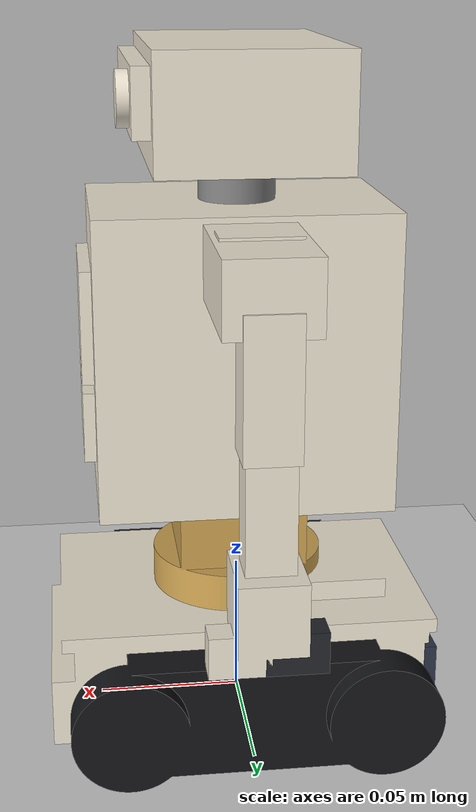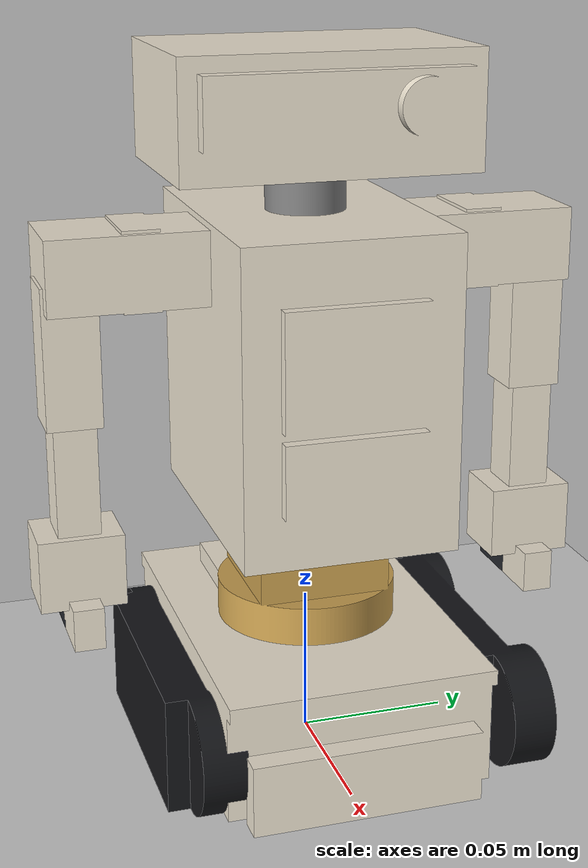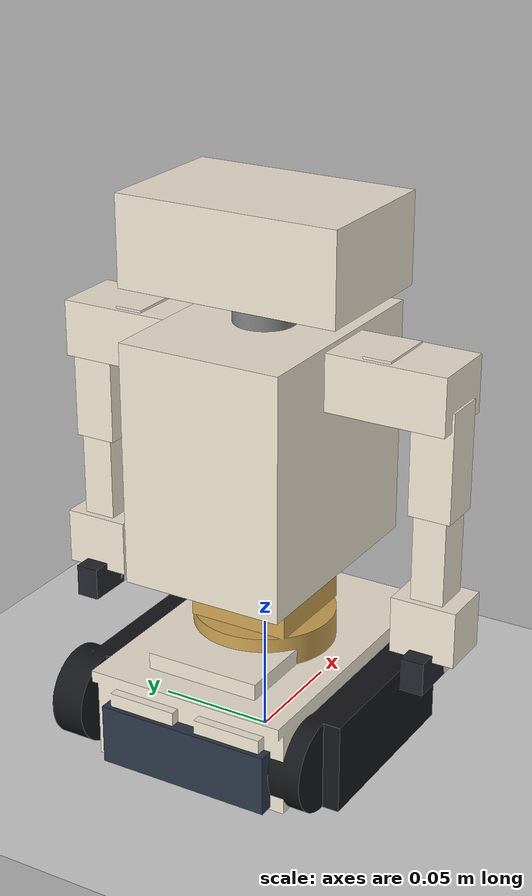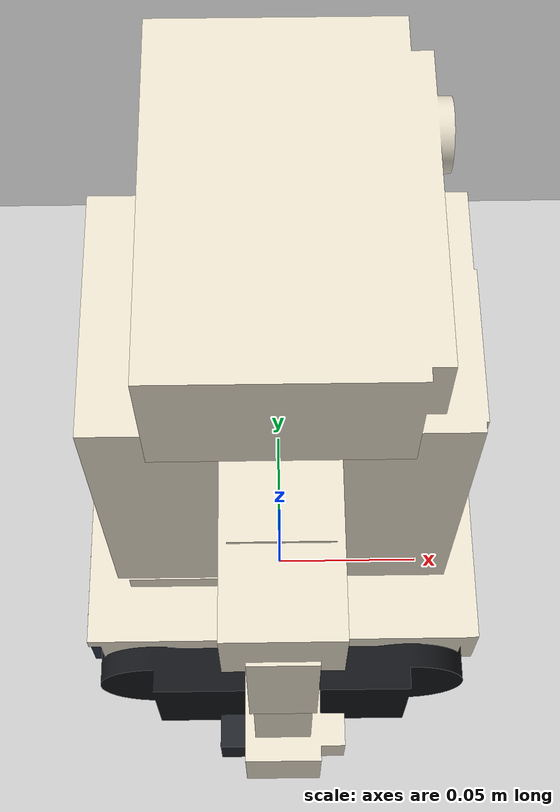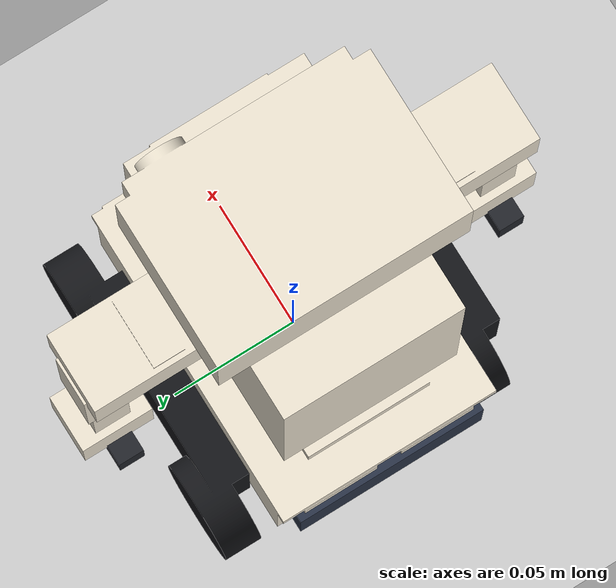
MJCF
<?xml version='1.0' encoding='utf-8'?>
<mujoco model="galahad">
  <compiler angle="radian" meshdir="." balanceinertia="true" />
  <option integrator="implicitfast" />
  <default>
    <joint damping="0.1" armature="0.01" />
  </default>
  <asset>
    <mesh name="galahad-base" file="galahad-base.stl" />
    <mesh name="galahad-rear_panel" file="galahad-rear_panel.stl" />
    <mesh name="galahad-tread_L" file="galahad-tread_L.stl" />
    <mesh name="galahad-tread_R" file="galahad-tread_R.stl" />
    <mesh name="galahad-waist" file="galahad-waist.stl" />
    <mesh name="galahad-torso" file="galahad-torso.stl" />
    <mesh name="galahad-neck" file="galahad-neck.stl" />
    <mesh name="galahad-head" file="galahad-head.stl" />
    <mesh name="galahad-shoulder_L" file="galahad-shoulder_L.stl" />
    <mesh name="galahad-upperarm_L" file="galahad-upperarm_L.stl" />
    <mesh name="galahad-forearm_L" file="galahad-forearm_L.stl" />
    <mesh name="galahad-hand_L" file="galahad-hand_L.stl" />
    <mesh name="galahad-jaw_L" file="galahad-jaw_L.stl" />
    <mesh name="galahad-shoulder_R" file="galahad-shoulder_R.stl" />
    <mesh name="galahad-upperarm_R" file="galahad-upperarm_R.stl" />
    <mesh name="galahad-forearm_R" file="galahad-forearm_R.stl" />
    <mesh name="galahad-hand_R" file="galahad-hand_R.stl" />
    <mesh name="galahad-jaw_R" file="galahad-jaw_R.stl" />
  </asset>
  <worldbody>
    <light name="sun" pos="0 0 3" dir="0 0 -1" directional="true" />
    <geom name="floor" type="plane" size="0 0 0.05" rgba="0.8 0.8 0.8 1" />
    <body name="base_link" pos="0 0 0" quat="1 0 0 0">
      <freejoint name="root" />
      <inertial pos="-0.014803559683337164 5.498723287641139e-19 0.028541766053046577" mass="0.4038111999999999" fullinertia="2.6178691825712243e-4 4.883571596682911e-4 6.332994552778354e-4 -7.300872063294368e-21 1.8889714683804695e-5 4.65342919199653e-21" />
      <geom name="base_link" type="mesh" mesh="galahad-base" pos="0 0 0" quat="1 0 0 0" rgba="0.929411768913269 0.8941176533699036 0.8196078538894653 1" />
      <body name="rear_panel" pos="0 0 0" quat="1 0 0 0">
        <inertial pos="-0.06299999999999999 -4.909553046007711e-18 0.017999999999999995" mass="0.004742399999999997" fullinertia="2.5498304e-6 2.8138240000001564e-7 2.296902400000014e-6 -1.1641532182693512e-22 1.4901161193847657e-21 2.0954757928848264e-22" />
        <geom name="rear_panel" type="mesh" mesh="galahad-rear_panel" pos="0 0 0" quat="1 0 0 0" rgba="0.16470588743686676 0.20000000298023224 0.27450981736183167 1" />
      </body>
      <body name="tread_L" pos="0.0425 0.052000000000000005 0.0195" quat="0.5 -0.5 0.5 0.5">
        <joint name="tread_L_drive" type="hinge" axis="0 0 1" ref="0" limited="false" />
        <inertial pos="1.4210854715202006e-16 0.04250000000000064 0.0029868706632391806" mass="0.017889910575127364" fullinertia="2.099683528081824e-5 2.6723442072826335e-6 2.246121794013947e-5 1.983571537547267e-10 1.8596649169921873e-19 -9.25536224917331e-20" />
        <geom name="tread_L" type="mesh" mesh="galahad-tread_L" pos="0.0195 0.0425 -0.052000000000000005" quat="-0.5 -0.5 0.5 0.5" rgba="0.0784313753247261 0.08235294371843338 0.0941176488995552 1" />
      </body>
      <body name="tread_R" pos="0.0425 -0.052000000000000005 0.0195" quat="0.5 -0.5 0.5 0.5">
        <joint name="tread_R_drive" type="hinge" axis="0 0 1" ref="0" limited="false" />
        <inertial pos="2.1316282072803006e-17 0.04250000000000026 0.002986870663239856" mass="0.017889910575127514" fullinertia="2.0996835280819033e-5 2.672344207282673e-6 2.2461217940140016e-5 1.9835715384860754e-10 2.5033950805664058e-20 -5.666993020413266e-20" />
        <geom name="tread_R" type="mesh" mesh="galahad-tread_R" pos="0.0195 0.0425 0.052000000000000005" quat="-0.5 -0.5 0.5 0.5" rgba="0.0784313753247261 0.08235294371843338 0.0941176488995552 1" />
      </body>
      <body name="waist" pos="0 0 0.051500000000000004" quat="0.7071067811865476 0 0 0.7071067811865475">
        <joint name="waist_yaw" type="hinge" axis="0 0 1" ref="0" range="-1.5707963267948966 1.5707963267948966" limited="true" />
        <inertial pos="-7.287569506481156e-18 -1.7056714334742097e-18 0.007760045530499834" mass="0.06646229045602617" fullinertia="2.0597229686421967e-5 2.0597572062645504e-5 2.6353424140666185e-5 -4.769576444800809e-10 -5.2462771290834453e-20 -4.602560966388627e-21" />
        <geom name="waist" type="mesh" mesh="galahad-waist" pos="0 0 -0.051500000000000004" quat="0.7071067811865476 0 0 -0.7071067811865475" rgba="0.7882353067398071 0.6274510025978088 0.3137255012989044 1" />
        <body name="torso" pos="0 0 0.0185" quat="0.7071067811865476 0 0.7071067811865475 0">
          <joint name="waist_pitch" type="hinge" axis="0 0 1" ref="0" range="-0.3490658503988659 0.3490658503988659" limited="true" />
          <inertial pos="-0.06345104759269206 -0.002603223935244563 3.5816977510788134e-19" mass="0.3006512000000002" fullinertia="3.9595509584043745e-4 3.7153556767138807e-4 5.289426069784923e-4 -6.698598008589324e-6 1.5524888990535382e-20 1.978131227649141e-21" />
          <geom name="torso" type="mesh" mesh="galahad-torso" pos="0.07 0 0" quat="-0.5 -0.5 0.5 0.5" rgba="0.929411768913269 0.8941176533699036 0.8196078538894653 1" />
          <body name="neck" pos="-0.121 0 0" quat="0.7071067811865476 0 -0.7071067811865475 0">
            <joint name="head_pan" type="hinge" axis="0 0 1" ref="0" range="-1.3962634015954636 1.3962634015954636" limited="true" />
            <inertial pos="-2.112298549264712e-17 -1.745161247845762e-17 -5.996980689815245e-14" mass="0.009585333376661466" fullinertia="5.614055434165674e-7 5.614017617969776e-7 8.096864145629806e-7 5.268100540171245e-12 -2.2815484896897625e-20 -4.540461233658695e-20" />
            <geom name="neck" type="mesh" mesh="galahad-neck" pos="0 0 -0.191" quat="0.7071067811865476 0 0 -0.7071067811865475" />
            <body name="head" pos="0 0 0.009000000000000001" quat="0.7071067811865476 0 0.7071067811865475 0">
              <joint name="head_tilt" type="hinge" axis="0 0 1" ref="0" range="-0.4363323129985824 0.6108652381980153" limited="true" />
              <inertial pos="-0.017227283484584893 -0.002610964436817978 2.0271301472082098e-4" mass="0.09788638632585543" fullinertia="1.1107725313276045e-4 8.51525269488403e-5 4.8388870144773236e-5 -7.086449909540353e-7 5.5017910874618065e-8 7.121405509389468e-7" />
              <geom name="head" type="mesh" mesh="galahad-head" pos="0.2 0 0" quat="-0.5 -0.5 0.5 0.5" rgba="0.929411768913269 0.8941176533699036 0.8196078538894653 1" />
            </body>
          </body>
          <body name="shoulder_L" pos="-0.1 0 0.046" quat="0.7071067811865476 0 -0.7071067811865475 0">
            <joint name="shoulder_yaw_L" type="hinge" axis="0 0 1" ref="0" range="-1.3962634015954636 1.3962634015954636" limited="true" />
            <inertial pos="0.013287671232876708 -1.171343135405949e-18 2.336030912088001e-17" mass="0.05010720000000001" fullinertia="6.070979200000298e-6 1.1984058191781284e-5 1.3096026191780994e-5 -1.4308453048473067e-21 -1.722507215462216e-20 -3.318806799749534e-21" />
            <geom name="shoulder_L" type="mesh" mesh="galahad-shoulder_L" pos="-0.046 0 -0.17" quat="0.7071067811865476 0 0 -0.7071067811865475" rgba="0.929411768913269 0.8941176533699036 0.8196078538894653 1" />
            <body name="upperarm_L" pos="0.032 0 -0.004" quat="0.7071067811865476 0 0.7071067811865475 0">
              <joint name="shoulder_pitch_L" type="hinge" axis="0 0 1" ref="0" range="-1.7453292519943295 1.6580627893946132" limited="true" />
              <inertial pos="0.022999999999999715 2.766400059069565e-18 9.947598300641403e-17" mass="0.04471199999999993" fullinertia="2.4144479999994636e-6 9.091439999996781e-6 9.091439999997318e-6 -5.114998202770982e-21 -9.834766387939454e-19 2.3137545213103406e-21" />
              <geom name="upperarm_L" type="mesh" mesh="galahad-upperarm_L" pos="0.166 0 -0.078" quat="-0.5 -0.5 0.5 0.5" rgba="0.929411768913269 0.8941176533699036 0.8196078538894653 1" />
              <body name="forearm_L" pos="0.046 0 0" quat="1 0 0 0">
                <joint name="elbow_L" type="hinge" axis="0 0 1" ref="0" range="-2.0943951023931953 1.5707963267948966" limited="true" />
                <inertial pos="0.0179999999999999 1.2030353198054614e-18 0" mass="0.030643199999999978" fullinertia="1.1542272000001695e-6 3.8099711999996604e-6 3.96318719999949e-6 -1.1059455573558844e-21 2.831220626831054e-20 1.548323780298233e-21" />
                <geom name="forearm_L" type="mesh" mesh="galahad-forearm_L" pos="0.12 0 -0.078" quat="-0.5 -0.5 0.5 0.5" rgba="0.929411768913269 0.8941176533699036 0.8196078538894653 1" />
                <body name="hand_L" pos="0.036000000000000004 0 0" quat="1 0 0 0">
                  <joint name="wrist_L" type="hinge" axis="0 0 1" ref="0" range="-1.5707963267948966 1.5707963267948966" limited="true" />
                  <inertial pos="0.014547770700636994 -0.0014331210191082776 -6.7886248639500064e-18" mass="0.03516800000000002" fullinertia="3.73905603397013e-6 4.694493078556425e-6 4.4766637791935105e-6 6.779923566878917e-7 6.654155203348892e-20 1.4603704289728955e-21" />
                  <geom name="hand_L" type="mesh" mesh="galahad-hand_L" pos="0.084 0 -0.078" quat="-0.5 -0.5 0.5 0.5" rgba="0.929411768913269 0.8941176533699036 0.8196078538894653 1" />
                  <body name="jaw_L" pos="0.024 0 0" quat="0 0 -0.7071067811865475 0.7071067811865476">
                    <joint name="gripper_L" type="hinge" axis="0 0 1" ref="0" range="0 0.7853981633974483" limited="true" />
                    <inertial pos="-0.004000000000000092 2.842170943040401e-17 -0.008999999999999985" mass="0.009520000000000004" fullinertia="3.966666666665884e-7 4.7282666666673405e-7 2.3482666666665185e-7 5.699694156646728e-20 7.12461769580841e-21 -1.5832483768463133e-21" />
                    <geom name="jaw_L" type="mesh" mesh="galahad-jaw_L" pos="-0.06 0.078 0" quat="0 0.7071067811865475 0 0.7071067811865476" rgba="0.13333334028720856 0.14509804546833038 0.16862745583057404 1" />
                  </body>
                </body>
              </body>
            </body>
          </body>
          <body name="shoulder_R" pos="-0.1 0 -0.046" quat="0.7071067811865476 0 -0.7071067811865475 0">
            <joint name="shoulder_yaw_R" type="hinge" axis="0 0 1" ref="0" range="-1.3962634015954636 1.3962634015954636" limited="true" />
            <inertial pos="-0.013287671232876724 8.518859166588723e-19 7.008092736264e-17" mass="0.05010719999999999" fullinertia="6.070979199998754e-6 1.1984058191779553e-5 1.30960261917808e-5 -1.250162346450162e-21 -2.269764978610847e-19 5.975986520449357e-22" />
            <geom name="shoulder_R" type="mesh" mesh="galahad-shoulder_R" pos="0.046 0 -0.17" quat="0.7071067811865476 0 0 -0.7071067811865475" rgba="0.929411768913269 0.8941176533699036 0.8196078538894653 1" />
            <body name="upperarm_R" pos="-0.032 0 -0.004" quat="0.7071067811865476 0 0.7071067811865475 0">
              <joint name="shoulder_pitch_R" type="hinge" axis="0 0 1" ref="0" range="-1.7453292519943295 1.6580627893946132" limited="true" />
              <inertial pos="0.02299999999999997 -2.766400059069564e-18 0" mass="0.04471199999999996" fullinertia="2.414448000000134e-6 9.091440000000134e-6 9.09144e-6 -3.266904968768355e-21 0 1.6152625903487204e-21" />
              <geom name="upperarm_R" type="mesh" mesh="galahad-upperarm_R" pos="0.166 0 0.078" quat="-0.5 -0.5 0.5 0.5" rgba="0.929411768913269 0.8941176533699036 0.8196078538894653 1" />
              <body name="forearm_R" pos="0.046 0 0" quat="1 0 0 0">
                <joint name="elbow_R" type="hinge" axis="0 0 1" ref="0" range="-2.0943951023931953 1.5707963267948966" limited="true" />
                <inertial pos="0.0179999999999999 -2.2556912246352387e-18 0" mass="0.030643199999999995" fullinertia="1.1542272000000564e-6 3.80997119999932e-6 3.963187199999263e-6 3.068998921662575e-21 2.831220626831054e-19 4.9491063691675655e-21" />
                <geom name="forearm_R" type="mesh" mesh="galahad-forearm_R" pos="0.12 0 0.078" quat="-0.5 -0.5 0.5 0.5" rgba="0.929411768913269 0.8941176533699036 0.8196078538894653 1" />
                <body name="hand_R" pos="0.036000000000000004 0 0" quat="1 0 0 0">
                  <joint name="wrist_R" type="hinge" axis="0 0 1" ref="0" range="-1.5707963267948966 1.5707963267948966" limited="true" />
                  <inertial pos="0.014547770700636922 -0.0014331210191082806 4.5257499093e-18" mass="0.035167999999999984" fullinertia="3.7390560339702877e-6 4.694493078556203e-6 4.4766637791931335e-6 6.779923566878991e-7 5.309502623832907e-21 2.7832391621414443e-21" />
                  <geom name="hand_R" type="mesh" mesh="galahad-hand_R" pos="0.084 0 0.078" quat="-0.5 -0.5 0.5 0.5" rgba="0.929411768913269 0.8941176533699036 0.8196078538894653 1" />
                  <body name="jaw_R" pos="0.024 0 0" quat="0 0 -0.7071067811865475 0.7071067811865476">
                    <joint name="gripper_R" type="hinge" axis="0 0 1" ref="0" range="0 0.7853981633974483" limited="true" />
                    <inertial pos="-0.003999999999999978 2.842170943040401e-17 -0.009000000000000005" mass="0.009519999999999994" fullinertia="3.966666666666483e-7 4.728266666666799e-7 2.348266666666645e-7 -6.332993507385253e-21 0 -1.5832483768463133e-21" />
                    <geom name="jaw_R" type="mesh" mesh="galahad-jaw_R" pos="-0.06 -0.078 0" quat="0 0.7071067811865475 0 0.7071067811865476" rgba="0.13333334028720856 0.14509804546833038 0.16862745583057404 1" />
                  </body>
                </body>
              </body>
            </body>
          </body>
        </body>
      </body>
    </body>
  </worldbody>
  <equality>
    <weld body1="base_link" body2="rear_panel" />
  </equality>
  <actuator>
    <position name="tread_L_drive" joint="tread_L_drive" kp="1000" dampratio="1" forcerange="-0.1570 0.1570" forcelimited="true" />
    <position name="tread_R_drive" joint="tread_R_drive" kp="1000" dampratio="1" forcerange="-0.1570 0.1570" forcelimited="true" />
    <position name="waist_yaw" joint="waist_yaw" kp="1000" dampratio="1" ctrlrange="-1.5707963267948966 1.5707963267948966" ctrllimited="true" forcerange="-0.9300 0.9300" forcelimited="true" />
    <position name="waist_pitch" joint="waist_pitch" kp="1000" dampratio="1" ctrlrange="-0.3490658503988659 0.3490658503988659" ctrllimited="true" forcerange="-0.9300 0.9300" forcelimited="true" />
    <position name="head_pan" joint="head_pan" kp="1000" dampratio="1" ctrlrange="-1.3962634015954636 1.3962634015954636" ctrllimited="true" forcerange="-0.5200 0.5200" forcelimited="true" />
    <position name="head_tilt" joint="head_tilt" kp="1000" dampratio="1" ctrlrange="-0.4363323129985824 0.6108652381980153" ctrllimited="true" forcerange="-0.5200 0.5200" forcelimited="true" />
    <position name="shoulder_yaw_L" joint="shoulder_yaw_L" kp="1000" dampratio="1" ctrlrange="-1.3962634015954636 1.3962634015954636" ctrllimited="true" forcerange="-0.9300 0.9300" forcelimited="true" />
    <position name="shoulder_pitch_L" joint="shoulder_pitch_L" kp="1000" dampratio="1" ctrlrange="-1.7453292519943295 1.6580627893946132" ctrllimited="true" forcerange="-0.9300 0.9300" forcelimited="true" />
    <position name="elbow_L" joint="elbow_L" kp="1000" dampratio="1" ctrlrange="-2.0943951023931953 1.5707963267948966" ctrllimited="true" forcerange="-0.9300 0.9300" forcelimited="true" />
    <position name="wrist_L" joint="wrist_L" kp="1000" dampratio="1" ctrlrange="-1.5707963267948966 1.5707963267948966" ctrllimited="true" forcerange="-0.5200 0.5200" forcelimited="true" />
    <position name="gripper_L" joint="gripper_L" kp="1000" dampratio="1" ctrlrange="0 0.7853981633974483" ctrllimited="true" forcerange="-0.5200 0.5200" forcelimited="true" />
    <position name="shoulder_yaw_R" joint="shoulder_yaw_R" kp="1000" dampratio="1" ctrlrange="-1.3962634015954636 1.3962634015954636" ctrllimited="true" forcerange="-0.9300 0.9300" forcelimited="true" />
    <position name="shoulder_pitch_R" joint="shoulder_pitch_R" kp="1000" dampratio="1" ctrlrange="-1.7453292519943295 1.6580627893946132" ctrllimited="true" forcerange="-0.9300 0.9300" forcelimited="true" />
    <position name="elbow_R" joint="elbow_R" kp="1000" dampratio="1" ctrlrange="-2.0943951023931953 1.5707963267948966" ctrllimited="true" forcerange="-0.9300 0.9300" forcelimited="true" />
    <position name="wrist_R" joint="wrist_R" kp="1000" dampratio="1" ctrlrange="-1.5707963267948966 1.5707963267948966" ctrllimited="true" forcerange="-0.5200 0.5200" forcelimited="true" />
    <position name="gripper_R" joint="gripper_R" kp="1000" dampratio="1" ctrlrange="0 0.7853981633974483" ctrllimited="true" forcerange="-0.5200 0.5200" forcelimited="true" />
  </actuator>
  <keyframe>
    <key name="design" qpos="0 0 0 1 0 0 0 0 0 0 0 0 0 0 0 0 0 0 0 0 0 0 0" ctrl="0 0 0 0 0 0 0 0 0 0 0 0 0 0 0 0" />
  </keyframe>
</mujoco>
